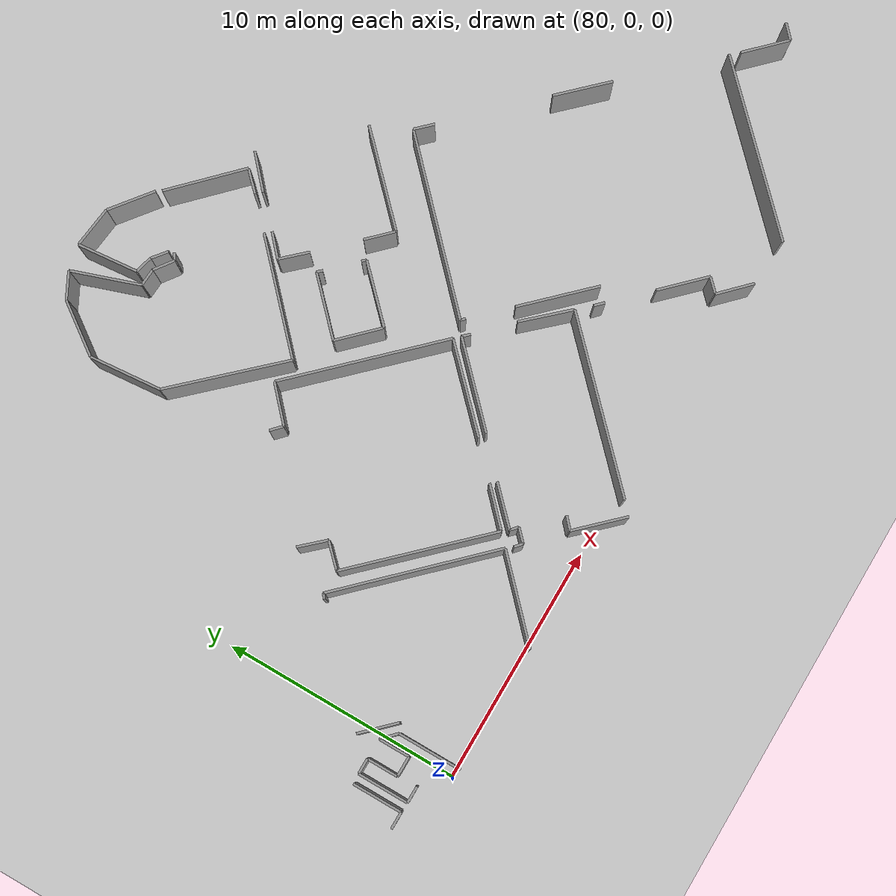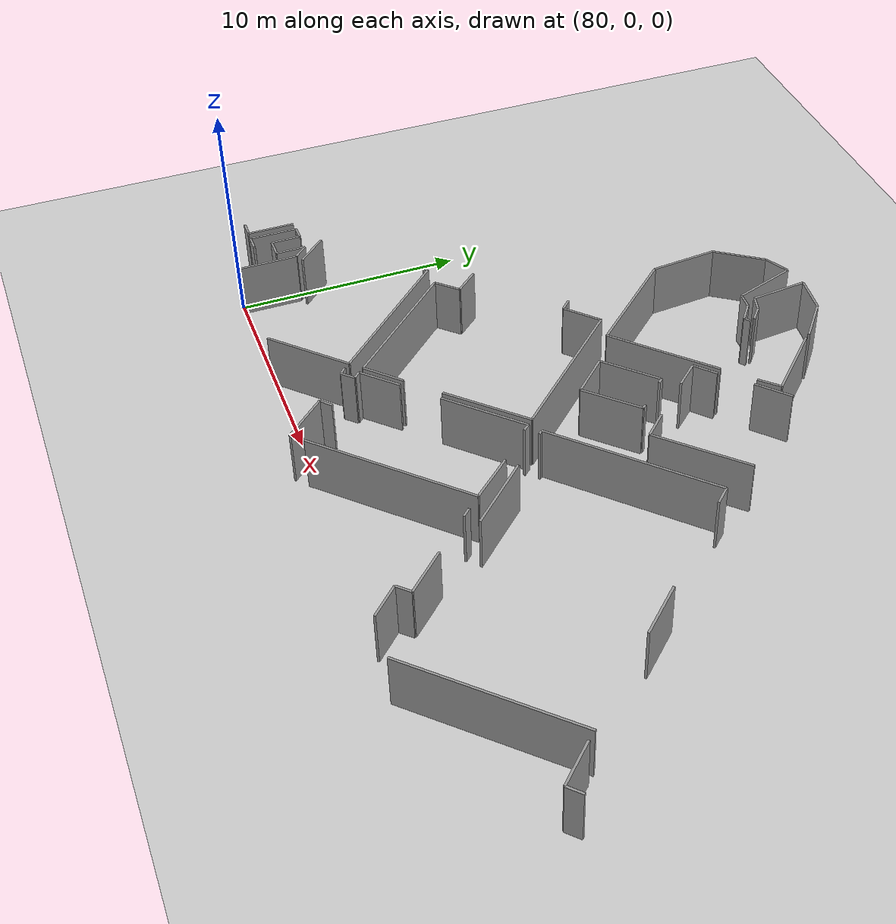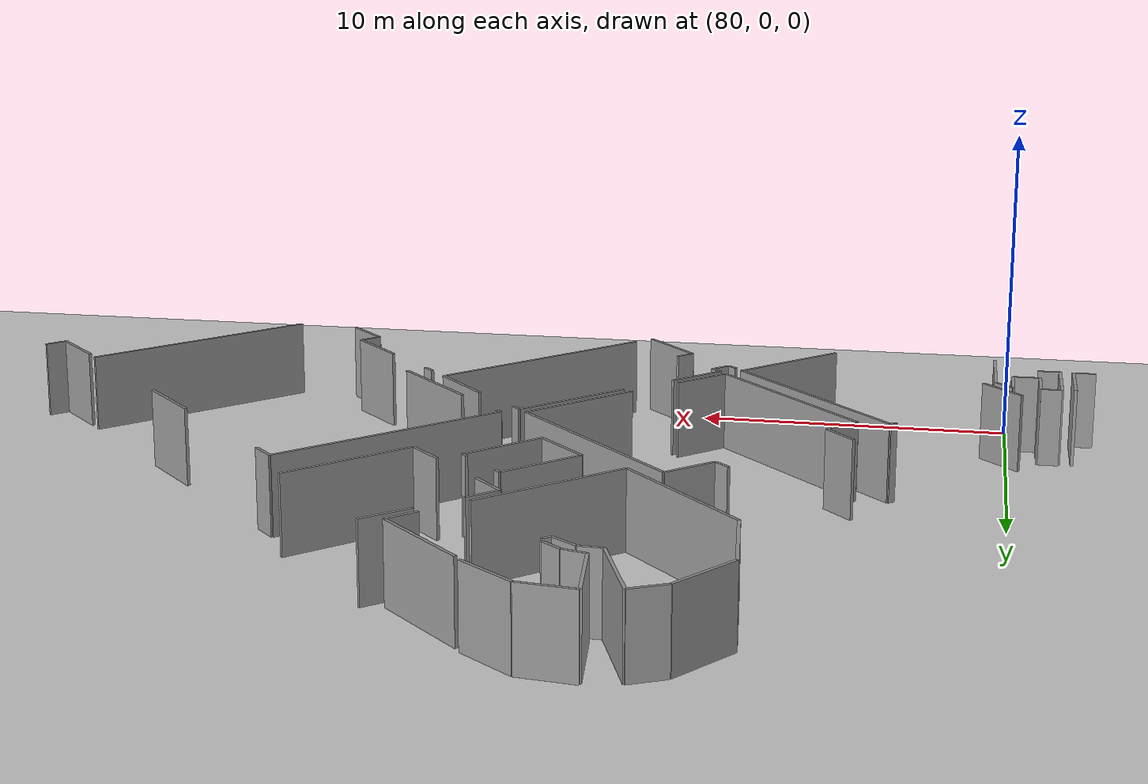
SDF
<sdf version="1.6">
 <world name="default">
  <model name="ground_plane">
   <static>1</static>
   <link name="link">
    <collision name="collision">
     <geometry><plane><normal>0 0 1</normal><size>100 100</size></plane></geometry>
     <surface><friction><ode><mu>100</mu><mu2>50</mu2></ode></friction></surface>
    </collision>
    <visual name="visual">
     <cast_shadows>0</cast_shadows>
     <geometry><plane><normal>0 0 1</normal><size>100 100</size></plane></geometry>
     <material>
      <script><uri>file://media/materials/scripts/gazebo.material</uri><name>Gazebo/Grey</name></script>
     </material>
    </visual>
   </link>
  </model>
  <model name="0510035342_A_40_1_101">
   <static>1</static>
   <link name="Wall_500">
    <collision name="Wall_500_Collision">
     <geometry><box><size>0.44970985452 0.1 2.5</size></box></geometry>
     <pose>0.22485492726 0 1.25 0 0 0</pose>
    </collision>
    <visual name="Wall_500_Visual">
     <pose>0.22485492726 0 1.25 0 0 0</pose>
     <geometry><box><size>0.44970985452 0.1 2.5</size></box></geometry>
     <material>
      <script><uri>file://media/materials/scripts/gazebo.material</uri><name>Gazebo/Grey</name></script>
      <ambient>1 1 1 1</ambient>
     </material>
    </visual>
    <pose>214.13136239 -20.8602560195 0 0 0 -0.786995606128</pose>
   </link>
   <link name="Wall_501">
    <collision name="Wall_501_Collision">
     <geometry><box><size>2.17964959322 0.1 2.5</size></box></geometry>
     <pose>1.08982479661 0 1.25 0 0 0</pose>
    </collision>
    <visual name="Wall_501_Visual">
     <pose>1.08982479661 0 1.25 0 0 0</pose>
     <geometry><box><size>2.17964959322 0.1 2.5</size></box></geometry>
     <material>
      <script><uri>file://media/materials/scripts/gazebo.material</uri><name>Gazebo/Grey</name></script>
      <ambient>1 1 1 1</ambient>
     </material>
    </visual>
    <pose>215.888956619 -22.6539164889 0 0 0 -0.793308347784</pose>
   </link>
   <link name="Wall_502">
    <collision name="Wall_502_Collision">
     <geometry><box><size>0.714434402893 0.1 2.5</size></box></geometry>
     <pose>0.357217201446 0 1.25 0 0 0</pose>
    </collision>
    <visual name="Wall_502_Visual">
     <pose>0.357217201446 0 1.25 0 0 0</pose>
     <geometry><box><size>0.714434402893 0.1 2.5</size></box></geometry>
     <material>
      <script><uri>file://media/materials/scripts/gazebo.material</uri><name>Gazebo/Grey</name></script>
      <ambient>1 1 1 1</ambient>
     </material>
    </visual>
    <pose>217.417962003 -24.2073046835 0 0 0 -2.35669725536</pose>
   </link>
   <link name="Wall_503">
    <collision name="Wall_503_Collision">
     <geometry><box><size>1.59753004843 0.1 2.5</size></box></geometry>
     <pose>0.798765024216 0 1.25 0 0 0</pose>
    </collision>
    <visual name="Wall_503_Visual">
     <pose>0.798765024216 0 1.25 0 0 0</pose>
     <geometry><box><size>1.59753004843 0.1 2.5</size></box></geometry>
     <material>
      <script><uri>file://media/materials/scripts/gazebo.material</uri><name>Gazebo/Grey</name></script>
      <ambient>1 1 1 1</ambient>
     </material>
    </visual>
    <pose>216.912526669 -24.7122320431 0 0 0 -0.780339184634</pose>
   </link>
   <link name="Wall_538">
    <collision name="Wall_538_Collision">
     <geometry><box><size>0.371779991295 0.1 2.5</size></box></geometry>
     <pose>0.185889995648 0 1.25 0 0 0</pose>
    </collision>
    <visual name="Wall_538_Visual">
     <pose>0.185889995648 0 1.25 0 0 0</pose>
     <geometry><box><size>0.371779991295 0.1 2.5</size></box></geometry>
     <material>
      <script><uri>file://media/materials/scripts/gazebo.material</uri><name>Gazebo/Grey</name></script>
      <ambient>1 1 1 1</ambient>
     </material>
    </visual>
    <pose>204.436655491 -22.8941887636 0 0 0 -0.730783925988</pose>
   </link>
   <link name="Wall_539">
    <collision name="Wall_539_Collision">
     <geometry><box><size>0.661773759399 0.1 2.5</size></box></geometry>
     <pose>0.330886879699 0 1.25 0 0 0</pose>
    </collision>
    <visual name="Wall_539_Visual">
     <pose>0.330886879699 0 1.25 0 0 0</pose>
     <geometry><box><size>0.661773759399 0.1 2.5</size></box></geometry>
     <material>
      <script><uri>file://media/materials/scripts/gazebo.material</uri><name>Gazebo/Grey</name></script>
      <ambient>1 1 1 1</ambient>
     </material>
    </visual>
    <pose>204.713501981 -23.1423346541 0 0 0 0.764771338961</pose>
   </link>
   <link name="Wall_540">
    <collision name="Wall_540_Collision">
     <geometry><box><size>0.378290217239 0.1 2.5</size></box></geometry>
     <pose>0.18914510862 0 1.25 0 0 0</pose>
    </collision>
    <visual name="Wall_540_Visual">
     <pose>0.18914510862 0 1.25 0 0 0</pose>
     <geometry><box><size>0.378290217239 0.1 2.5</size></box></geometry>
     <material>
      <script><uri>file://media/materials/scripts/gazebo.material</uri><name>Gazebo/Grey</name></script>
      <ambient>1 1 1 1</ambient>
     </material>
    </visual>
    <pose>205.190998679 -22.6841410139 0 0 0 2.39180887865</pose>
   </link>
   <link name="Wall_541">
    <collision name="Wall_541_Collision">
     <geometry><box><size>1.92375619638 0.1 2.5</size></box></geometry>
     <pose>0.961878098192 0 1.25 0 0 0</pose>
    </collision>
    <visual name="Wall_541_Visual">
     <pose>0.961878098192 0 1.25 0 0 0</pose>
     <geometry><box><size>1.92375619638 0.1 2.5</size></box></geometry>
     <material>
      <script><uri>file://media/materials/scripts/gazebo.material</uri><name>Gazebo/Grey</name></script>
      <ambient>1 1 1 1</ambient>
     </material>
    </visual>
    <pose>204.914152189 -22.4263435944 0 0 0 0.775222060555</pose>
   </link>
   <link name="Wall_542">
    <collision name="Wall_542_Collision">
     <geometry><box><size>3.92142048441 0.1 2.5</size></box></geometry>
     <pose>1.9607102422 0 1.25 0 0 0</pose>
    </collision>
    <visual name="Wall_542_Visual">
     <pose>1.9607102422 0 1.25 0 0 0</pose>
     <geometry><box><size>3.92142048441 0.1 2.5</size></box></geometry>
     <material>
      <script><uri>file://media/materials/scripts/gazebo.material</uri><name>Gazebo/Grey</name></script>
      <ambient>1 1 1 1</ambient>
     </material>
    </visual>
    <pose>207.682617088 -19.7797927461 0 0 0 0.773169578642</pose>
   </link>
   <link name="Wall_543">
    <collision name="Wall_543_Collision">
     <geometry><box><size>0.365168819254 0.1 2.5</size></box></geometry>
     <pose>0.182584409627 0 1.25 0 0 0</pose>
    </collision>
    <visual name="Wall_543_Visual">
     <pose>0.182584409627 0 1.25 0 0 0</pose>
     <geometry><box><size>0.365168819254 0.1 2.5</size></box></geometry>
     <material>
      <script><uri>file://media/materials/scripts/gazebo.material</uri><name>Gazebo/Grey</name></script>
      <ambient>1 1 1 1</ambient>
     </material>
    </visual>
    <pose>210.489180128 -17.041044397 0 0 0 -0.820816416654</pose>
   </link>
   <link name="Wall_544">
    <collision name="Wall_544_Collision">
     <geometry><box><size>2.28175068855 0.1 2.5</size></box></geometry>
     <pose>1.14087534427 0 1.25 0 0 0</pose>
    </collision>
    <visual name="Wall_544_Visual">
     <pose>1.14087534427 0 1.25 0 0 0</pose>
     <geometry><box><size>2.28175068855 0.1 2.5</size></box></geometry>
     <material>
      <script><uri>file://media/materials/scripts/gazebo.material</uri><name>Gazebo/Grey</name></script>
      <ambient>1 1 1 1</ambient>
     </material>
    </visual>
    <pose>212.08422229 -18.6188154018 0 0 0 -0.830435447327</pose>
   </link>
   <link name="Wall_545">
    <collision name="Wall_545_Collision">
     <geometry><box><size>7.65985564454 0.1 2.5</size></box></geometry>
     <pose>3.82992782227 0 1.25 0 0 0</pose>
    </collision>
    <visual name="Wall_545_Visual">
     <pose>3.82992782227 0 1.25 0 0 0</pose>
     <geometry><box><size>7.65985564454 0.1 2.5</size></box></geometry>
     <material>
      <script><uri>file://media/materials/scripts/gazebo.material</uri><name>Gazebo/Grey</name></script>
      <ambient>1 1 1 1</ambient>
     </material>
    </visual>
    <pose>213.623387179 -20.3032612009 0 0 0 -2.36679248019</pose>
   </link>
   <link name="Wall_547">
    <collision name="Wall_547_Collision">
     <geometry><box><size>0.608065689077 0.1 2.5</size></box></geometry>
     <pose>0.304032844538 0 1.25 0 0 0</pose>
    </collision>
    <visual name="Wall_547_Visual">
     <pose>0.304032844538 0 1.25 0 0 0</pose>
     <geometry><box><size>0.608065689077 0.1 2.5</size></box></geometry>
     <material>
      <script><uri>file://media/materials/scripts/gazebo.material</uri><name>Gazebo/Grey</name></script>
      <ambient>1 1 1 1</ambient>
     </material>
    </visual>
    <pose>206.509194351 -24.0353550747 0 0 0 -2.40908802402</pose>
   </link>
   <link name="Wall_548">
    <collision name="Wall_548_Collision">
     <geometry><box><size>2.33225339501 0.1 2.5</size></box></geometry>
     <pose>1.16612669751 0 1.25 0 0 0</pose>
    </collision>
    <visual name="Wall_548_Visual">
     <pose>1.16612669751 0 1.25 0 0 0</pose>
     <geometry><box><size>2.33225339501 0.1 2.5</size></box></geometry>
     <material>
      <script><uri>file://media/materials/scripts/gazebo.material</uri><name>Gazebo/Grey</name></script>
      <ambient>1 1 1 1</ambient>
     </material>
    </visual>
    <pose>206.057096414 -24.4419892309 0 0 0 -0.807192447547</pose>
   </link>
   <link name="Wall_596">
    <collision name="Wall_596_Collision">
     <geometry><box><size>2.09641369501 0.1 2.5</size></box></geometry>
     <pose>1.04820684751 0 1.25 0 0 0</pose>
    </collision>
    <visual name="Wall_596_Visual">
     <pose>1.04820684751 0 1.25 0 0 0</pose>
     <geometry><box><size>2.09641369501 0.1 2.5</size></box></geometry>
     <material>
      <script><uri>file://media/materials/scripts/gazebo.material</uri><name>Gazebo/Grey</name></script>
      <ambient>1 1 1 1</ambient>
     </material>
    </visual>
    <pose>193.612465712 -22.1647363609 0 0 0 -1.57079632679</pose>
   </link>
   <link name="Wall_597">
    <collision name="Wall_597_Collision">
     <geometry><box><size>0.71522909682 0.1 2.5</size></box></geometry>
     <pose>0.35761454841 0 1.25 0 0 0</pose>
    </collision>
    <visual name="Wall_597_Visual">
     <pose>0.35761454841 0 1.25 0 0 0</pose>
     <geometry><box><size>0.71522909682 0.1 2.5</size></box></geometry>
     <material>
      <script><uri>file://media/materials/scripts/gazebo.material</uri><name>Gazebo/Grey</name></script>
      <ambient>1 1 1 1</ambient>
     </material>
    </visual>
    <pose>193.612465712 -24.2611500559 0 0 0 3.14159265359</pose>
   </link>
   <link name="Wall_606">
    <collision name="Wall_606_Collision">
     <geometry><box><size>0.707355481053 0.1 2.5</size></box></geometry>
     <pose>0.353677740526 0 1.25 0 0 0</pose>
    </collision>
    <visual name="Wall_606_Visual">
     <pose>0.353677740526 0 1.25 0 0 0</pose>
     <geometry><box><size>0.707355481053 0.1 2.5</size></box></geometry>
     <material>
      <script><uri>file://media/materials/scripts/gazebo.material</uri><name>Gazebo/Grey</name></script>
      <ambient>1 1 1 1</ambient>
     </material>
    </visual>
    <pose>194.743980494 -24.2906126181 0 0 0 3.14159265359</pose>
   </link>
   <link name="Wall_607">
    <collision name="Wall_607_Collision">
     <geometry><box><size>2.14568729046 0.1 2.5</size></box></geometry>
     <pose>1.07284364523 0 1.25 0 0 0</pose>
    </collision>
    <visual name="Wall_607_Visual">
     <pose>1.07284364523 0 1.25 0 0 0</pose>
     <geometry><box><size>2.14568729046 0.1 2.5</size></box></geometry>
     <material>
      <script><uri>file://media/materials/scripts/gazebo.material</uri><name>Gazebo/Grey</name></script>
      <ambient>1 1 1 1</ambient>
     </material>
    </visual>
    <pose>194.036625013 -24.2906126181 0 0 0 1.57079632679</pose>
   </link>
   <link name="Wall_608">
    <collision name="Wall_608_Collision">
     <geometry><box><size>0.655034034339 0.1 2.5</size></box></geometry>
     <pose>0.32751701717 0 1.25 0 0 0</pose>
    </collision>
    <visual name="Wall_608_Visual">
     <pose>0.32751701717 0 1.25 0 0 0</pose>
     <geometry><box><size>0.655034034339 0.1 2.5</size></box></geometry>
     <material>
      <script><uri>file://media/materials/scripts/gazebo.material</uri><name>Gazebo/Grey</name></script>
      <ambient>1 1 1 1</ambient>
     </material>
    </visual>
    <pose>194.036625013 -22.1449253276 0 0 0 0.0</pose>
   </link>
   <link name="Wall_609">
    <collision name="Wall_609_Collision">
     <geometry><box><size>1.31819567205 0.1 2.5</size></box></geometry>
     <pose>0.659097836026 0 1.25 0 0 0</pose>
    </collision>
    <visual name="Wall_609_Visual">
     <pose>0.659097836026 0 1.25 0 0 0</pose>
     <geometry><box><size>1.31819567205 0.1 2.5</size></box></geometry>
     <material>
      <script><uri>file://media/materials/scripts/gazebo.material</uri><name>Gazebo/Grey</name></script>
      <ambient>1 1 1 1</ambient>
     </material>
    </visual>
    <pose>194.691659047 -22.1449253276 0 0 0 -1.57079632679</pose>
   </link>
   <link name="Wall_610">
    <collision name="Wall_610_Collision">
     <geometry><box><size>0.860763994717 0.1 2.5</size></box></geometry>
     <pose>0.430381997359 0 1.25 0 0 0</pose>
    </collision>
    <visual name="Wall_610_Visual">
     <pose>0.430381997359 0 1.25 0 0 0</pose>
     <geometry><box><size>0.860763994717 0.1 2.5</size></box></geometry>
     <material>
      <script><uri>file://media/materials/scripts/gazebo.material</uri><name>Gazebo/Grey</name></script>
      <ambient>1 1 1 1</ambient>
     </material>
    </visual>
    <pose>194.691659047 -23.4631209997 0 0 0 0.0</pose>
   </link>
   <link name="Wall_611">
    <collision name="Wall_611_Collision">
     <geometry><box><size>1.31006806868 0.1 2.5</size></box></geometry>
     <pose>0.655034034339 0 1.25 0 0 0</pose>
    </collision>
    <visual name="Wall_611_Visual">
     <pose>0.655034034339 0 1.25 0 0 0</pose>
     <geometry><box><size>1.31006806868 0.1 2.5</size></box></geometry>
     <material>
      <script><uri>file://media/materials/scripts/gazebo.material</uri><name>Gazebo/Grey</name></script>
      <ambient>1 1 1 1</ambient>
     </material>
    </visual>
    <pose>195.552423042 -23.4631209997 0 0 0 1.57079632679</pose>
   </link>
   <link name="Wall_612">
    <collision name="Wall_612_Collision">
     <geometry><box><size>0.7766397763 0.1 2.5</size></box></geometry>
     <pose>0.38831988815 0 1.25 0 0 0</pose>
    </collision>
    <visual name="Wall_612_Visual">
     <pose>0.38831988815 0 1.25 0 0 0</pose>
     <geometry><box><size>0.7766397763 0.1 2.5</size></box></geometry>
     <material>
      <script><uri>file://media/materials/scripts/gazebo.material</uri><name>Gazebo/Grey</name></script>
      <ambient>1 1 1 1</ambient>
     </material>
    </visual>
    <pose>195.552423042 -22.153052931 0 0 0 -0.77244791608</pose>
   </link>
   <link name="Wall_613">
    <collision name="Wall_613_Collision">
     <geometry><box><size>2.70166615869 0.1 2.5</size></box></geometry>
     <pose>1.35083307935 0 1.25 0 0 0</pose>
    </collision>
    <visual name="Wall_613_Visual">
     <pose>1.35083307935 0 1.25 0 0 0</pose>
     <geometry><box><size>2.70166615869 0.1 2.5</size></box></geometry>
     <material>
      <script><uri>file://media/materials/scripts/gazebo.material</uri><name>Gazebo/Grey</name></script>
      <ambient>1 1 1 1</ambient>
     </material>
    </visual>
    <pose>196.108655898 -22.695062481 0 0 0 -1.57079632679</pose>
   </link>
   <link name="Wall_628">
    <collision name="Wall_628_Collision">
     <geometry><box><size>1.70430227311 0.1 2.5</size></box></geometry>
     <pose>0.852151136555 0 1.25 0 0 0</pose>
    </collision>
    <visual name="Wall_628_Visual">
     <pose>0.852151136555 0 1.25 0 0 0</pose>
     <geometry><box><size>1.70430227311 0.1 2.5</size></box></geometry>
     <material>
      <script><uri>file://media/materials/scripts/gazebo.material</uri><name>Gazebo/Grey</name></script>
      <ambient>1 1 1 1</ambient>
     </material>
    </visual>
    <pose>196.48074774 -22.5182871076 0 0 0 2.34470801046</pose>
   </link>
   <link name="Wall_629">
    <collision name="Wall_629_Collision">
     <geometry><box><size>0.226420797648 0.1 2.5</size></box></geometry>
     <pose>0.113210398824 0 1.25 0 0 0</pose>
    </collision>
    <visual name="Wall_629_Visual">
     <pose>0.113210398824 0 1.25 0 0 0</pose>
     <geometry><box><size>0.226420797648 0.1 2.5</size></box></geometry>
     <material>
      <script><uri>file://media/materials/scripts/gazebo.material</uri><name>Gazebo/Grey</name></script>
      <ambient>1 1 1 1</ambient>
     </material>
    </visual>
    <pose>199.05389617 -17.6429950218 0 0 0 0.682098903338</pose>
   </link>
   <link name="Wall_630">
    <collision name="Wall_630_Collision">
     <geometry><box><size>7.16732380037 0.1 2.5</size></box></geometry>
     <pose>3.58366190019 0 1.25 0 0 0</pose>
    </collision>
    <visual name="Wall_630_Visual">
     <pose>3.58366190019 0 1.25 0 0 0</pose>
     <geometry><box><size>7.16732380037 0.1 2.5</size></box></geometry>
     <material>
      <script><uri>file://media/materials/scripts/gazebo.material</uri><name>Gazebo/Grey</name></script>
      <ambient>1 1 1 1</ambient>
     </material>
    </visual>
    <pose>199.229655593 -17.5002539876 0 0 0 -0.799481033441</pose>
   </link>
   <link name="Wall_631">
    <collision name="Wall_631_Collision">
     <geometry><box><size>3.9789022351 0.1 2.5</size></box></geometry>
     <pose>1.98945111755 0 1.25 0 0 0</pose>
    </collision>
    <visual name="Wall_631_Visual">
     <pose>1.98945111755 0 1.25 0 0 0</pose>
     <geometry><box><size>3.9789022351 0.1 2.5</size></box></geometry>
     <material>
      <script><uri>file://media/materials/scripts/gazebo.material</uri><name>Gazebo/Grey</name></script>
      <ambient>1 1 1 1</ambient>
     </material>
    </visual>
    <pose>204.225845779 -22.6391852078 0 0 0 -2.37677848999</pose>
   </link>
   <link name="Wall_636">
    <collision name="Wall_636_Collision">
     <geometry><box><size>6.47797918992 0.1 2.5</size></box></geometry>
     <pose>3.23898959496 0 1.25 0 0 0</pose>
    </collision>
    <visual name="Wall_636_Visual">
     <pose>3.23898959496 0 1.25 0 0 0</pose>
     <geometry><box><size>6.47797918992 0.1 2.5</size></box></geometry>
     <material>
      <script><uri>file://media/materials/scripts/gazebo.material</uri><name>Gazebo/Grey</name></script>
      <ambient>1 1 1 1</ambient>
     </material>
    </visual>
    <pose>204.708422229 -22.1766737783 0 0 0 2.33698048365</pose>
   </link>
   <link name="Wall_637">
    <collision name="Wall_637_Collision">
     <geometry><box><size>1.22199267819 0.1 2.5</size></box></geometry>
     <pose>0.610996339095 0 1.25 0 0 0</pose>
    </collision>
    <visual name="Wall_637_Visual">
     <pose>0.610996339095 0 1.25 0 0 0</pose>
     <geometry><box><size>1.22199267819 0.1 2.5</size></box></geometry>
     <material>
      <script><uri>file://media/materials/scripts/gazebo.material</uri><name>Gazebo/Grey</name></script>
      <ambient>1 1 1 1</ambient>
     </material>
    </visual>
    <pose>200.216651427 -17.5088895662 0 0 0 0.79098305536</pose>
   </link>
   <link name="Wall_638">
    <collision name="Wall_638_Collision">
     <geometry><box><size>1.27097450845 0.1 2.5</size></box></geometry>
     <pose>0.635487254226 0 1.25 0 0 0</pose>
    </collision>
    <visual name="Wall_638_Visual">
     <pose>0.635487254226 0 1.25 0 0 0</pose>
     <geometry><box><size>1.27097450845 0.1 2.5</size></box></geometry>
     <material>
      <script><uri>file://media/materials/scripts/gazebo.material</uri><name>Gazebo/Grey</name></script>
      <ambient>1 1 1 1</ambient>
     </material>
    </visual>
    <pose>201.075891496 -16.6399979681 0 0 0 2.30912220135</pose>
   </link>
   <link name="Wall_639">
    <collision name="Wall_639_Collision">
     <geometry><box><size>0.589251244539 0.1 2.5</size></box></geometry>
     <pose>0.29462562227 0 1.25 0 0 0</pose>
    </collision>
    <visual name="Wall_639_Visual">
     <pose>0.29462562227 0 1.25 0 0 0</pose>
     <geometry><box><size>0.589251244539 0.1 2.5</size></box></geometry>
     <material>
      <script><uri>file://media/materials/scripts/gazebo.material</uri><name>Gazebo/Grey</name></script>
      <ambient>1 1 1 1</ambient>
     </material>
    </visual>
    <pose>203.560398253 -12.4906024586 0 0 0 -0.761012754225</pose>
   </link>
   <link name="Wall_640">
    <collision name="Wall_640_Collision">
     <geometry><box><size>1.79105705927 0.1 2.5</size></box></geometry>
     <pose>0.895528529635 0 1.25 0 0 0</pose>
    </collision>
    <visual name="Wall_640_Visual">
     <pose>0.895528529635 0 1.25 0 0 0</pose>
     <geometry><box><size>1.79105705927 0.1 2.5</size></box></geometry>
     <material>
      <script><uri>file://media/materials/scripts/gazebo.material</uri><name>Gazebo/Grey</name></script>
      <ambient>1 1 1 1</ambient>
     </material>
    </visual>
    <pose>203.98709743 -12.8969826272 0 0 0 0.743672095119</pose>
   </link>
   <link name="Wall_641">
    <collision name="Wall_641_Collision">
     <geometry><box><size>7.11148488212 0.1 2.5</size></box></geometry>
     <pose>3.55574244106 0 1.25 0 0 0</pose>
    </collision>
    <visual name="Wall_641_Visual">
     <pose>3.55574244106 0 1.25 0 0 0</pose>
     <geometry><box><size>7.11148488212 0.1 2.5</size></box></geometry>
     <material>
      <script><uri>file://media/materials/scripts/gazebo.material</uri><name>Gazebo/Grey</name></script>
      <ambient>1 1 1 1</ambient>
     </material>
    </visual>
    <pose>205.305293102 -11.684445799 0 0 0 -0.801359628539</pose>
   </link>
   <link name="Wall_642">
    <collision name="Wall_642_Collision">
     <geometry><box><size>4.01228554118 0.1 2.5</size></box></geometry>
     <pose>2.00614277059 0 1.25 0 0 0</pose>
    </collision>
    <visual name="Wall_642_Visual">
     <pose>2.00614277059 0 1.25 0 0 0</pose>
     <geometry><box><size>4.01228554118 0.1 2.5</size></box></geometry>
     <material>
      <script><uri>file://media/materials/scripts/gazebo.material</uri><name>Gazebo/Grey</name></script>
      <ambient>1 1 1 1</ambient>
     </material>
    </visual>
    <pose>210.252971655 -16.7926445189 0 0 0 -2.36335640892</pose>
   </link>
   <link name="Wall_643">
    <collision name="Wall_643_Collision">
     <geometry><box><size>1.9065722851 0.1 2.5</size></box></geometry>
     <pose>0.953286142551 0 1.25 0 0 0</pose>
    </collision>
    <visual name="Wall_643_Visual">
     <pose>0.953286142551 0 1.25 0 0 0</pose>
     <geometry><box><size>1.9065722851 0.1 2.5</size></box></geometry>
     <material>
      <script><uri>file://media/materials/scripts/gazebo.material</uri><name>Gazebo/Grey</name></script>
      <ambient>1 1 1 1</ambient>
     </material>
    </visual>
    <pose>206.087574926 -20.8602560195 0 0 0 -2.37946363358</pose>
   </link>
   <link name="Wall_645">
    <collision name="Wall_645_Collision">
     <geometry><box><size>3.41671244864 0.1 2.5</size></box></geometry>
     <pose>1.70835622432 0 1.25 0 0 0</pose>
    </collision>
    <visual name="Wall_645_Visual">
     <pose>1.70835622432 0 1.25 0 0 0</pose>
     <geometry><box><size>3.41671244864 0.1 2.5</size></box></geometry>
     <material>
      <script><uri>file://media/materials/scripts/gazebo.material</uri><name>Gazebo/Grey</name></script>
      <ambient>1 1 1 1</ambient>
     </material>
    </visual>
    <pose>214.931423347 -20.7076094687 0 0 0 2.34031947022</pose>
   </link>
   <link name="Wall_646">
    <collision name="Wall_646_Collision">
     <geometry><box><size>0.219051757161 0.1 2.5</size></box></geometry>
     <pose>0.109525878581 0 1.25 0 0 0</pose>
    </collision>
    <visual name="Wall_646_Visual">
     <pose>0.109525878581 0 1.25 0 0 0</pose>
     <geometry><box><size>0.219051757161 0.1 2.5</size></box></geometry>
     <material>
      <script><uri>file://media/materials/scripts/gazebo.material</uri><name>Gazebo/Grey</name></script>
      <ambient>1 1 1 1</ambient>
     </material>
    </visual>
    <pose>211.16986691 -16.8223610688 0 0 0 2.38981594221</pose>
   </link>
   <link name="Wall_647">
    <collision name="Wall_647_Collision">
     <geometry><box><size>7.83604365158 0.1 2.5</size></box></geometry>
     <pose>3.91802182579 0 1.25 0 0 0</pose>
    </collision>
    <visual name="Wall_647_Visual">
     <pose>3.91802182579 0 1.25 0 0 0</pose>
     <geometry><box><size>7.83604365158 0.1 2.5</size></box></geometry>
     <material>
      <script><uri>file://media/materials/scripts/gazebo.material</uri><name>Gazebo/Grey</name></script>
      <ambient>1 1 1 1</ambient>
     </material>
    </visual>
    <pose>211.009854719 -16.6727623692 0 0 0 0.765755090418</pose>
   </link>
   <link name="Wall_648">
    <collision name="Wall_648_Collision">
     <geometry><box><size>0.863717108862 0.1 2.5</size></box></geometry>
     <pose>0.431858554431 0 1.25 0 0 0</pose>
    </collision>
    <visual name="Wall_648_Visual">
     <pose>0.431858554431 0 1.25 0 0 0</pose>
     <geometry><box><size>0.863717108862 0.1 2.5</size></box></geometry>
     <material>
      <script><uri>file://media/materials/scripts/gazebo.material</uri><name>Gazebo/Grey</name></script>
      <ambient>1 1 1 1</ambient>
     </material>
    </visual>
    <pose>216.658539063 -11.2417454028 0 0 0 -0.807856948983</pose>
   </link>
   <link name="Wall_649">
    <collision name="Wall_649_Collision">
     <geometry><box><size>2.44669570567 0.1 2.5</size></box></geometry>
     <pose>1.22334785283 0 1.25 0 0 0</pose>
    </collision>
    <visual name="Wall_649_Visual">
     <pose>1.22334785283 0 1.25 0 0 0</pose>
     <geometry><box><size>2.44669570567 0.1 2.5</size></box></geometry>
     <material>
      <script><uri>file://media/materials/scripts/gazebo.material</uri><name>Gazebo/Grey</name></script>
      <ambient>1 1 1 1</ambient>
     </material>
    </visual>
    <pose>220.597886823 -15.2821802296 0 0 0 -0.80742103401</pose>
   </link>
   <link name="Wall_650">
    <collision name="Wall_650_Collision">
     <geometry><box><size>7.81405992881 0.1 2.5</size></box></geometry>
     <pose>3.90702996441 0 1.25 0 0 0</pose>
    </collision>
    <visual name="Wall_650_Visual">
     <pose>3.90702996441 0 1.25 0 0 0</pose>
     <geometry><box><size>7.81405992881 0.1 2.5</size></box></geometry>
     <material>
      <script><uri>file://media/materials/scripts/gazebo.material</uri><name>Gazebo/Grey</name></script>
      <ambient>1 1 1 1</ambient>
     </material>
    </visual>
    <pose>225.570964137 -20.4541298385 0 0 0 -2.35690698634</pose>
   </link>
   <link name="Wall_678">
    <collision name="Wall_678_Collision">
     <geometry><box><size>2.02228370211 0.1 2.5</size></box></geometry>
     <pose>1.01114185106 0 1.25 0 0 0</pose>
    </collision>
    <visual name="Wall_678_Visual">
     <pose>1.01114185106 0 1.25 0 0 0</pose>
     <geometry><box><size>2.02228370211 0.1 2.5</size></box></geometry>
     <material>
      <script><uri>file://media/materials/scripts/gazebo.material</uri><name>Gazebo/Grey</name></script>
      <ambient>1 1 1 1</ambient>
     </material>
    </visual>
    <pose>225.865589759 -20.8262216804 0 0 0 -0.790726709768</pose>
   </link>
   <link name="Wall_679">
    <collision name="Wall_679_Collision">
     <geometry><box><size>0.719405533908 0.1 2.5</size></box></geometry>
     <pose>0.359702766954 0 1.25 0 0 0</pose>
    </collision>
    <visual name="Wall_679_Visual">
     <pose>0.359702766954 0 1.25 0 0 0</pose>
     <geometry><box><size>0.719405533908 0.1 2.5</size></box></geometry>
     <material>
      <script><uri>file://media/materials/scripts/gazebo.material</uri><name>Gazebo/Grey</name></script>
      <ambient>1 1 1 1</ambient>
     </material>
    </visual>
    <pose>227.287920349 -22.263791527 0 0 0 0.756435235673</pose>
   </link>
   <link name="Wall_686">
    <collision name="Wall_686_Collision">
     <geometry><box><size>2.03434795304 0.1 2.5</size></box></geometry>
     <pose>1.01717397652 0 1.25 0 0 0</pose>
    </collision>
    <visual name="Wall_686_Visual">
     <pose>1.01717397652 0 1.25 0 0 0</pose>
     <geometry><box><size>2.03434795304 0.1 2.5</size></box></geometry>
     <material>
      <script><uri>file://media/materials/scripts/gazebo.material</uri><name>Gazebo/Grey</name></script>
      <ambient>1 1 1 1</ambient>
     </material>
    </visual>
    <pose>209.26495987 -14.2720715229 0 0 0 2.34851387845</pose>
   </link>
   <link name="Wall_687">
    <collision name="Wall_687_Collision">
     <geometry><box><size>2.78796959395 0.1 2.5</size></box></geometry>
     <pose>1.39398479697 0 1.25 0 0 0</pose>
    </collision>
    <visual name="Wall_687_Visual">
     <pose>1.39398479697 0 1.25 0 0 0</pose>
     <geometry><box><size>2.78796959395 0.1 2.5</size></box></geometry>
     <material>
      <script><uri>file://media/materials/scripts/gazebo.material</uri><name>Gazebo/Grey</name></script>
      <ambient>1 1 1 1</ambient>
     </material>
    </visual>
    <pose>207.837549528 -12.8225642589 0 0 0 0.771354504837</pose>
   </link>
   <link name="Wall_688">
    <collision name="Wall_688_Collision">
     <geometry><box><size>0.249208957491 0.1 2.5</size></box></geometry>
     <pose>0.124604478746 0 1.25 0 0 0</pose>
    </collision>
    <visual name="Wall_688_Visual">
     <pose>0.124604478746 0 1.25 0 0 0</pose>
     <geometry><box><size>0.249208957491 0.1 2.5</size></box></geometry>
     <material>
      <script><uri>file://media/materials/scripts/gazebo.material</uri><name>Gazebo/Grey</name></script>
      <ambient>1 1 1 1</ambient>
     </material>
    </visual>
    <pose>209.836431982 -10.8790511023 0 0 0 -0.846693125811</pose>
   </link>
   <link name="Wall_689">
    <collision name="Wall_689_Collision">
     <geometry><box><size>0.212386039382 0.1 2.5</size></box></geometry>
     <pose>0.106193019691 0 1.25 0 0 0</pose>
    </collision>
    <visual name="Wall_689_Visual">
     <pose>0.106193019691 0 1.25 0 0 0</pose>
     <geometry><box><size>0.212386039382 0.1 2.5</size></box></geometry>
     <material>
      <script><uri>file://media/materials/scripts/gazebo.material</uri><name>Gazebo/Grey</name></script>
      <ambient>1 1 1 1</ambient>
     </material>
    </visual>
    <pose>211.083511125 -12.1688001626 0 0 0 -0.837003447542</pose>
   </link>
   <link name="Wall_690">
    <collision name="Wall_690_Collision">
     <geometry><box><size>2.76221300687 0.1 2.5</size></box></geometry>
     <pose>1.38110650344 0 1.25 0 0 0</pose>
    </collision>
    <visual name="Wall_690_Visual">
     <pose>1.38110650344 0 1.25 0 0 0</pose>
     <geometry><box><size>2.76221300687 0.1 2.5</size></box></geometry>
     <material>
      <script><uri>file://media/materials/scripts/gazebo.material</uri><name>Gazebo/Grey</name></script>
      <ambient>1 1 1 1</ambient>
     </material>
    </visual>
    <pose>211.225744184 -12.3265264655 0 0 0 -2.36009564075</pose>
   </link>
   <link name="Wall_691">
    <collision name="Wall_691_Collision">
     <geometry><box><size>1.31269927978 0.1 2.5</size></box></geometry>
     <pose>0.656349639892 0 1.25 0 0 0</pose>
    </collision>
    <visual name="Wall_691_Visual">
     <pose>0.656349639892 0 1.25 0 0 0</pose>
     <geometry><box><size>1.31269927978 0.1 2.5</size></box></geometry>
     <material>
      <script><uri>file://media/materials/scripts/gazebo.material</uri><name>Gazebo/Grey</name></script>
      <ambient>1 1 1 1</ambient>
     </material>
    </visual>
    <pose>212.782688205 -12.7412882251 0 0 0 2.34949052714</pose>
   </link>
   <link name="Wall_692">
    <collision name="Wall_692_Collision">
     <geometry><box><size>1.28629053182 0.1 2.5</size></box></geometry>
     <pose>0.643145265909 0 1.25 0 0 0</pose>
    </collision>
    <visual name="Wall_692_Visual">
     <pose>0.643145265909 0 1.25 0 0 0</pose>
     <geometry><box><size>1.28629053182 0.1 2.5</size></box></geometry>
     <material>
      <script><uri>file://media/materials/scripts/gazebo.material</uri><name>Gazebo/Grey</name></script>
      <ambient>1 1 1 1</ambient>
     </material>
    </visual>
    <pose>210.377425582 -10.2590673575 0 0 0 2.31485416637</pose>
   </link>
   <link name="Wall_693">
    <collision name="Wall_693_Collision">
     <geometry><box><size>1.11720668533 0.1 2.5</size></box></geometry>
     <pose>0.558603342663 0 1.25 0 0 0</pose>
    </collision>
    <visual name="Wall_693_Visual">
     <pose>0.558603342663 0 1.25 0 0 0</pose>
     <geometry><box><size>1.11720668533 0.1 2.5</size></box></geometry>
     <material>
      <script><uri>file://media/materials/scripts/gazebo.material</uri><name>Gazebo/Grey</name></script>
      <ambient>1 1 1 1</ambient>
     </material>
    </visual>
    <pose>209.506248095 -9.31270953977 0 0 0 0.732646120072</pose>
   </link>
   <link name="Wall_694">
    <collision name="Wall_694_Collision">
     <geometry><box><size>1.68732874527 0.1 2.5</size></box></geometry>
     <pose>0.843664372636 0 1.25 0 0 0</pose>
    </collision>
    <visual name="Wall_694_Visual">
     <pose>0.843664372636 0 1.25 0 0 0</pose>
     <geometry><box><size>1.68732874527 0.1 2.5</size></box></geometry>
     <material>
      <script><uri>file://media/materials/scripts/gazebo.material</uri><name>Gazebo/Grey</name></script>
      <ambient>1 1 1 1</ambient>
     </material>
    </visual>
    <pose>211.50513055 -7.453012293 0 0 0 0.734605269605</pose>
   </link>
   <link name="Wall_695">
    <collision name="Wall_695_Collision">
     <geometry><box><size>4.39325189181 0.1 2.5</size></box></geometry>
     <pose>2.1966259459 0 1.25 0 0 0</pose>
    </collision>
    <visual name="Wall_695_Visual">
     <pose>2.1966259459 0 1.25 0 0 0</pose>
     <geometry><box><size>4.39325189181 0.1 2.5</size></box></geometry>
     <material>
      <script><uri>file://media/materials/scripts/gazebo.material</uri><name>Gazebo/Grey</name></script>
      <ambient>1 1 1 1</ambient>
     </material>
    </visual>
    <pose>215.914355379 -9.66016458397 0 0 0 -2.36432970993</pose>
   </link>
   <link name="Wall_696">
    <collision name="Wall_696_Collision">
     <geometry><box><size>5.2463660898 0.1 2.5</size></box></geometry>
     <pose>2.6231830449 0 1.25 0 0 0</pose>
    </collision>
    <visual name="Wall_696_Visual">
     <pose>2.6231830449 0 1.25 0 0 0</pose>
     <geometry><box><size>5.2463660898 0.1 2.5</size></box></geometry>
     <material>
      <script><uri>file://media/materials/scripts/gazebo.material</uri><name>Gazebo/Grey</name></script>
      <ambient>1 1 1 1</ambient>
     </material>
    </visual>
    <pose>206.379660673 -11.8640150361 0 0 0 2.32013983044</pose>
   </link>
   <link name="Wall_697">
    <collision name="Wall_697_Collision">
     <geometry><box><size>3.00135127546 0.1 2.5</size></box></geometry>
     <pose>1.50067563773 0 1.25 0 0 0</pose>
    </collision>
    <visual name="Wall_697_Visual">
     <pose>1.50067563773 0 1.25 0 0 0</pose>
     <geometry><box><size>3.00135127546 0.1 2.5</size></box></geometry>
     <material>
      <script><uri>file://media/materials/scripts/gazebo.material</uri><name>Gazebo/Grey</name></script>
      <ambient>1 1 1 1</ambient>
     </material>
    </visual>
    <pose>202.806055065 -8.02296047953 0 0 0 1.65993922952</pose>
   </link>
   <link name="Wall_698">
    <collision name="Wall_698_Collision">
     <geometry><box><size>2.42896393088 0.1 2.5</size></box></geometry>
     <pose>1.21448196544 0 1.25 0 0 0</pose>
    </collision>
    <visual name="Wall_698_Visual">
     <pose>1.21448196544 0 1.25 0 0 0</pose>
     <geometry><box><size>2.42896393088 0.1 2.5</size></box></geometry>
     <material>
      <script><uri>file://media/materials/scripts/gazebo.material</uri><name>Gazebo/Grey</name></script>
      <ambient>1 1 1 1</ambient>
     </material>
    </visual>
    <pose>202.538860104 -5.03352636391 0 0 0 0.946243753084</pose>
   </link>
   <link name="Wall_699">
    <collision name="Wall_699_Collision">
     <geometry><box><size>1.17950968882 0.1 2.5</size></box></geometry>
     <pose>0.589754844409 0 1.25 0 0 0</pose>
    </collision>
    <visual name="Wall_699_Visual">
     <pose>0.589754844409 0 1.25 0 0 0</pose>
     <geometry><box><size>1.17950968882 0.1 2.5</size></box></geometry>
     <material>
      <script><uri>file://media/materials/scripts/gazebo.material</uri><name>Gazebo/Grey</name></script>
      <ambient>1 1 1 1</ambient>
     </material>
    </visual>
    <pose>203.959158793 -3.06309052118 0 0 0 0.470196051605</pose>
   </link>
   <link name="Wall_700">
    <collision name="Wall_700_Collision">
     <geometry><box><size>2.91547792068 0.1 2.5</size></box></geometry>
     <pose>1.45773896034 0 1.25 0 0 0</pose>
    </collision>
    <visual name="Wall_700_Visual">
     <pose>1.45773896034 0 1.25 0 0 0</pose>
     <geometry><box><size>2.91547792068 0.1 2.5</size></box></geometry>
     <material>
      <script><uri>file://media/materials/scripts/gazebo.material</uri><name>Gazebo/Grey</name></script>
      <ambient>1 1 1 1</ambient>
     </material>
    </visual>
    <pose>205.010667479 -2.52870059941 0 0 0 -1.23799847684</pose>
   </link>
   <link name="Wall_701">
    <collision name="Wall_701_Collision">
     <geometry><box><size>0.717990616087 0.1 2.5</size></box></geometry>
     <pose>0.358995308044 0 1.25 0 0 0</pose>
    </collision>
    <visual name="Wall_701_Visual">
     <pose>0.358995308044 0 1.25 0 0 0</pose>
     <geometry><box><size>0.717990616087 0.1 2.5</size></box></geometry>
     <material>
      <script><uri>file://media/materials/scripts/gazebo.material</uri><name>Gazebo/Grey</name></script>
      <ambient>1 1 1 1</ambient>
     </material>
    </visual>
    <pose>205.963121 -5.28421213045 0 0 0 -0.0697448479156</pose>
   </link>
   <link name="Wall_702">
    <collision name="Wall_702_Collision">
     <geometry><box><size>0.932189875337 0.1 2.5</size></box></geometry>
     <pose>0.466094937669 0 1.25 0 0 0</pose>
    </collision>
    <visual name="Wall_702_Visual">
     <pose>0.466094937669 0 1.25 0 0 0</pose>
     <geometry><box><size>0.932189875337 0.1 2.5</size></box></geometry>
     <material>
      <script><uri>file://media/materials/scripts/gazebo.material</uri><name>Gazebo/Grey</name></script>
      <ambient>1 1 1 1</ambient>
     </material>
    </visual>
    <pose>206.679366047 -5.33424768871 0 0 0 -0.63260235778</pose>
   </link>
   <link name="Wall_703">
    <collision name="Wall_703_Collision">
     <geometry><box><size>0.311363217964 0.1 2.5</size></box></geometry>
     <pose>0.155681608982 0 1.25 0 0 0</pose>
    </collision>
    <visual name="Wall_703_Visual">
     <pose>0.155681608982 0 1.25 0 0 0</pose>
     <geometry><box><size>0.311363217964 0.1 2.5</size></box></geometry>
     <material>
      <script><uri>file://media/materials/scripts/gazebo.material</uri><name>Gazebo/Grey</name></script>
      <ambient>1 1 1 1</ambient>
     </material>
    </visual>
    <pose>207.431169359 -5.88540079244 0 0 0 0.630775413015</pose>
   </link>
   <link name="Wall_704">
    <collision name="Wall_704_Collision">
     <geometry><box><size>3.48622189035 0.1 2.5</size></box></geometry>
     <pose>1.74311094517 0 1.25 0 0 0</pose>
    </collision>
    <visual name="Wall_704_Visual">
     <pose>1.74311094517 0 1.25 0 0 0</pose>
     <geometry><box><size>3.48622189035 0.1 2.5</size></box></geometry>
     <material>
      <script><uri>file://media/materials/scripts/gazebo.material</uri><name>Gazebo/Grey</name></script>
      <ambient>1 1 1 1</ambient>
     </material>
    </visual>
    <pose>209.562125368 -4.01605201666 0 0 0 -0.778752544886</pose>
   </link>
   <link name="Wall_705">
    <collision name="Wall_705_Collision">
     <geometry><box><size>1.05602658574 0.1 2.5</size></box></geometry>
     <pose>0.52801329287 0 1.25 0 0 0</pose>
    </collision>
    <visual name="Wall_705_Visual">
     <pose>0.52801329287 0 1.25 0 0 0</pose>
     <geometry><box><size>1.05602658574 0.1 2.5</size></box></geometry>
     <material>
      <script><uri>file://media/materials/scripts/gazebo.material</uri><name>Gazebo/Grey</name></script>
      <ambient>1 1 1 1</ambient>
     </material>
    </visual>
    <pose>212.043584273 -6.46474652037 0 0 0 -2.35619449019</pose>
   </link>
   <link name="Wall_706">
    <collision name="Wall_706_Collision">
     <geometry><box><size>5.16290056078 0.1 2.5</size></box></geometry>
     <pose>2.58145028039 0 1.25 0 0 0</pose>
    </collision>
    <visual name="Wall_706_Visual">
     <pose>2.58145028039 0 1.25 0 0 0</pose>
     <geometry><box><size>5.16290056078 0.1 2.5</size></box></geometry>
     <material>
      <script><uri>file://media/materials/scripts/gazebo.material</uri><name>Gazebo/Grey</name></script>
      <ambient>1 1 1 1</ambient>
     </material>
    </visual>
    <pose>210.131057604 -8.31682413898 0 0 0 -2.38416603473</pose>
   </link>
   <link name="Wall_707">
    <collision name="Wall_707_Collision">
     <geometry><box><size>0.734227385519 0.1 2.5</size></box></geometry>
     <pose>0.36711369276 0 1.25 0 0 0</pose>
    </collision>
    <visual name="Wall_707_Visual">
     <pose>0.36711369276 0 1.25 0 0 0</pose>
     <geometry><box><size>0.734227385519 0.1 2.5</size></box></geometry>
     <material>
      <script><uri>file://media/materials/scripts/gazebo.material</uri><name>Gazebo/Grey</name></script>
      <ambient>1 1 1 1</ambient>
     </material>
    </visual>
    <pose>207.608960683 -5.48740221477 0 0 0 2.46279986968</pose>
   </link>
   <link name="Wall_708">
    <collision name="Wall_708_Collision">
     <geometry><box><size>0.740622849015 0.1 2.5</size></box></geometry>
     <pose>0.370311424507 0 1.25 0 0 0</pose>
    </collision>
    <visual name="Wall_708_Visual">
     <pose>0.370311424507 0 1.25 0 0 0</pose>
     <geometry><box><size>0.740622849015 0.1 2.5</size></box></geometry>
     <material>
      <script><uri>file://media/materials/scripts/gazebo.material</uri><name>Gazebo/Grey</name></script>
      <ambient>1 1 1 1</ambient>
     </material>
    </visual>
    <pose>207.037488571 -5.02641471096 0 0 0 2.87115980045</pose>
   </link>
   <link name="Wall_709">
    <collision name="Wall_709_Collision">
     <geometry><box><size>2.52602772494 0.1 2.5</size></box></geometry>
     <pose>1.26301386247 0 1.25 0 0 0</pose>
    </collision>
    <visual name="Wall_709_Visual">
     <pose>1.26301386247 0 1.25 0 0 0</pose>
     <geometry><box><size>2.52602772494 0.1 2.5</size></box></geometry>
     <material>
      <script><uri>file://media/materials/scripts/gazebo.material</uri><name>Gazebo/Grey</name></script>
      <ambient>1 1 1 1</ambient>
     </material>
    </visual>
    <pose>206.323783399 -4.82855836635 0 0 0 1.66646299965</pose>
   </link>
   <link name="Wall_710">
    <collision name="Wall_710_Collision">
     <geometry><box><size>1.73599413495 0.1 2.5</size></box></geometry>
     <pose>0.867997067475 0 1.25 0 0 0</pose>
    </collision>
    <visual name="Wall_710_Visual">
     <pose>0.867997067475 0 1.25 0 0 0</pose>
     <geometry><box><size>1.73599413495 0.1 2.5</size></box></geometry>
     <material>
      <script><uri>file://media/materials/scripts/gazebo.material</uri><name>Gazebo/Grey</name></script>
      <ambient>1 1 1 1</ambient>
     </material>
    </visual>
    <pose>206.082495174 -2.31408107284 0 0 0 -0.126895593381</pose>
   </link>
   <link name="Wall_711">
    <collision name="Wall_711_Collision">
     <geometry><box><size>2.05714007143 0.1 2.5</size></box></geometry>
     <pose>1.02857003571 0 1.25 0 0 0</pose>
    </collision>
    <visual name="Wall_711_Visual">
     <pose>1.02857003571 0 1.25 0 0 0</pose>
     <geometry><box><size>2.05714007143 0.1 2.5</size></box></geometry>
     <material>
      <script><uri>file://media/materials/scripts/gazebo.material</uri><name>Gazebo/Grey</name></script>
      <ambient>1 1 1 1</ambient>
     </material>
    </visual>
    <pose>207.804531139 -2.53378035152 0 0 0 -0.66770287872</pose>
   </link>
   <link name="Wall_712">
    <collision name="Wall_712_Collision">
     <geometry><box><size>0.0377443015102 0.1 2.5</size></box></geometry>
     <pose>0.0188721507551 0 1.25 0 0 0</pose>
    </collision>
    <visual name="Wall_712_Visual">
     <pose>0.0188721507551 0 1.25 0 0 0</pose>
     <geometry><box><size>0.0377443015102 0.1 2.5</size></box></geometry>
     <material>
      <script><uri>file://media/materials/scripts/gazebo.material</uri><name>Gazebo/Grey</name></script>
      <ambient>1 1 1 1</ambient>
     </material>
    </visual>
    <pose>207.641979071 -5.50568932236 0 0 0 2.635801338</pose>
   </link>
   <pose>-115.7 25.291537133 0 0 0 0</pose>
  </model>
 </world>
</sdf>
